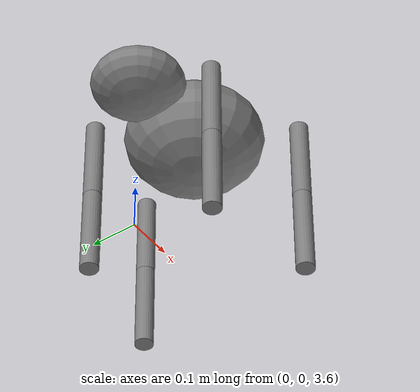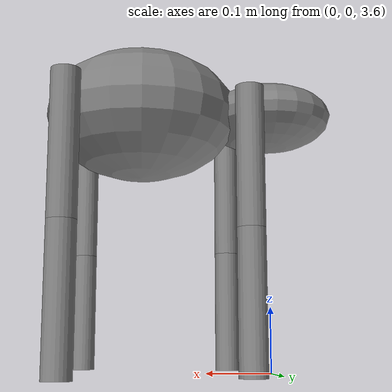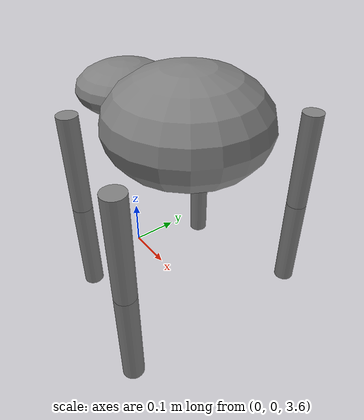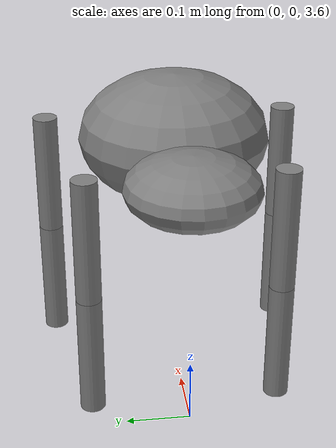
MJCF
<mujoco>
    <worldbody>
        <light diffuse=".5 .5 .5" pos="0 0 10" dir="0 0 -1"/>
        <geom type="plane" size="50 50 0.1" rgba="1 1 1 1"/>
        <!-- Main body -->
        <body name="main_body" pos="0 0 4">
            <!-- Cephalothorax -->
            <geom type="ellipsoid" size="0.1 0.1 0.05" pos="0 0 0" />

            <!-- Abdomen -->
            <geom type="ellipsoid" size="0.15 0.15 0.1" pos="0.2 0 0" />

            <!-- Define legs with a more realistic alignment -->
            <!-- Leg 1 -->
            <body name="leg1" pos="0.05 0.15 -0.1">
                <joint type="hinge" pos="0 0 0.1" axis="1 0 0" name="leg1_joint1" />
                <!-- radiu and half height -->
                <geom type="cylinder" size="0.02 0.1" />
                <body name="leg1_2" pos="0 0 -0.2">
                    <joint type="hinge" pos="0 0 0.1" axis="0 1 0" name="leg1_joint2" />
                    <geom type="cylinder" size="0.02 0.1" />
                </body>
            </body>
            <!-- Additional legs should be defined similarly, adjusting their position and orientation accordingly. -->
            <body name="leg2" pos="0.05 -0.15 -0.1">
                <joint type="hinge" pos="0 0 0.1" axis="1 0 0" name="leg2_joint1" />
                <!-- radiu and half height -->
                <geom type="cylinder" size="0.02 0.1" />
                <body name="leg2_2" pos="0 0 -0.2">
                    <joint type="hinge" pos="0 0 0.1" axis="0 1 0" name="leg2_joint2" />
                    <geom type="cylinder" size="0.02 0.1" />
                </body>
            </body>

            <body name="leg3" pos="0.3 0.2 -0.1">
                <joint type="hinge" pos="0 0 0.1" axis="1 0 0" name="leg3_joint1" />
                <!-- radiu and half height -->
                <geom type="cylinder" size="0.02 0.1" />
                <body name="leg3_2" pos="0 0 -0.2">
                    <joint type="hinge" pos="0 0 0.1" axis="0 1 0" name="leg3_joint2" />
                    <geom type="cylinder" size="0.02 0.1" />
                </body>
            </body>

            <body name="leg4" pos="0.3 -0.2 -0.1">
                <joint type="hinge" pos="0 0 0.1" axis="1 0 0" name="leg4_joint1" />
                <!-- radiu and half height -->
                <geom type="cylinder" size="0.02 0.1" />
                <body name="leg4_2" pos="0 0 -0.2">
                    <joint type="hinge" pos="0 0 0.1" axis="0 1 0" name="leg4_joint2" />
                    <geom type="cylinder" size="0.02 0.1" />
                </body>
            </body>
        </body>
    </worldbody>
    <actuator>
        <!-- Actuators for leg joints -->
        <motor joint="leg1_joint1" ctrlrange="-1 1" />
        <motor joint="leg1_joint2" ctrlrange="-1 1" />
        <!-- Additional actuators for other legs -->
    </actuator>
</mujoco>
